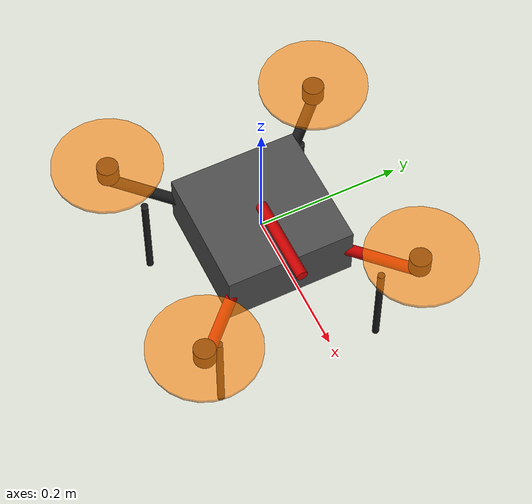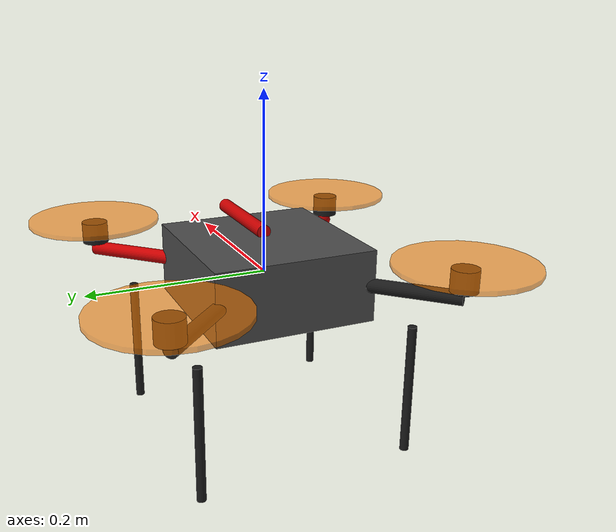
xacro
<?xml version="1.0"?>
<robot xmlns:xacro="http://www.ros.org/wiki/xacro" name="drone2">

  <!-- ==================== Core Drone Description ==================== -->
  <xacro:include filename="drone_core.xacro" />

  <!-- ==================== Gazebo Configurations ==================== -->
  <xacro:include filename="gazebo.xacro" />

</robot>

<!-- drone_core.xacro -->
<robot xmlns:xacro="http://www.ros.org/wiki/xacro">

  <!-- ==================== Properties ==================== -->
  <!-- All-up weight (AUW): 2.5 kg -->
  <!-- Propeller diameter: 6 inch (0.1524 m), radius: 0.0762 m -->
  <!-- Frame: X-configuration quadcopter -->
  <xacro:property name="body_mass" value="1.0"/>
  <xacro:property name="rotor_mass" value="0.025"/>
  <xacro:property name="body_width" value="0.18"/>
  <xacro:property name="body_length" value="0.18"/>
  <xacro:property name="body_height" value="0.08"/>
  <xacro:property name="arm_length" value="0.22"/>
  <xacro:property name="arm_radius" value="0.008"/>
  <xacro:property name="prop_radius" value="0.0762"/>
  <xacro:property name="prop_thickness" value="0.005"/>
  <xacro:property name="leg_length" value="0.15"/>
  <xacro:property name="leg_radius" value="0.005"/>

  <!-- ==================== Materials ==================== -->
  <material name="dark_grey">
    <color rgba="0.3 0.3 0.3 1.0"/>
  </material>
  <material name="red">
    <color rgba="0.8 0.0 0.0 1.0"/>
  </material>
  <material name="green">
    <color rgba="0.0 0.8 0.0 1.0"/>
  </material>
  <material name="black">
    <color rgba="0.1 0.1 0.1 1.0"/>
  </material>
  <material name="orange">
    <color rgba="1.0 0.5 0.0 0.6"/>
  </material>

  <!-- ==================== Base Link ==================== -->
  <link name="base_link"/>

  <!-- base_footprint: on the ground directly below base_link -->
  <link name="base_footprint"/>
  <joint name="base_footprint_joint" type="fixed">
    <parent link="base_link"/>
    <child link="base_footprint"/>
    <origin xyz="0 0 -0.195" rpy="0 0 0"/>
  </joint>

  <!-- ==================== Body ==================== -->
  <link name="body_link">
    <visual>
      <geometry>
        <box size="${body_length} ${body_width} ${body_height}"/>
      </geometry>
      <material name="dark_grey"/>
    </visual>
    <collision>
      <geometry>
        <box size="${body_length} ${body_width} ${body_height}"/>
      </geometry>
    </collision>
    <inertial>
      <mass value="${body_mass}"/>
      <inertia ixx="0.012" ixy="0" ixz="0" iyy="0.012" iyz="0" izz="0.020"/>
    </inertial>
  </link>
  <joint name="body_joint" type="fixed">
    <parent link="base_link"/>
    <child link="body_link"/>
    <origin xyz="0 0 0" rpy="0 0 0"/>
  </joint>

  <!-- Arrow marker showing front direction -->
  <link name="front_marker">
    <visual>
      <origin xyz="0.06 0 0" rpy="0 1.5708 0"/>
      <geometry>
        <cylinder radius="0.008" length="0.12"/>
      </geometry>
      <material name="red"/>
    </visual>
  </link>
  <joint name="front_marker_joint" type="fixed">
    <parent link="base_link"/>
    <child link="front_marker"/>
    <origin xyz="0 0 0.045" rpy="0 0 0"/>
  </joint>

  <!-- ==================== Arm Macro ==================== -->
  <xacro:macro name="arm" params="id x y angle color">
    <link name="arm_${id}">
      <visual>
        <origin xyz="${arm_length/2} 0 0" rpy="0 1.5708 0"/>
        <geometry>
          <cylinder radius="${arm_radius}" length="${arm_length}"/>
        </geometry>
        <material name="${color}"/>
      </visual>
    </link>
    <joint name="arm_${id}_joint" type="fixed">
      <parent link="base_link"/>
      <child link="arm_${id}"/>
      <origin xyz="0 0 0" rpy="0 0 ${angle}"/>
    </joint>

    <!-- Motor mount -->
    <link name="motor_${id}">
      <visual>
        <geometry>
          <cylinder radius="0.015" length="0.025"/>
        </geometry>
        <material name="black"/>
      </visual>
    </link>
    <joint name="motor_${id}_joint" type="fixed">
      <parent link="base_link"/>
      <child link="motor_${id}"/>
      <origin xyz="${x} ${y} 0.02" rpy="0 0 0"/>
    </joint>

    <!-- Propeller disc -->
    <link name="prop_${id}">
      <visual>
        <geometry>
          <cylinder radius="${prop_radius}" length="${prop_thickness}"/>
        </geometry>
        <material name="orange"/>
      </visual>
      <inertial>
        <mass value="${rotor_mass}"/>
        <inertia ixx="0.0001" ixy="0" ixz="0" iyy="0.0001" iyz="0" izz="0.0001"/>
      </inertial>
    </link>
    <joint name="prop_${id}_joint" type="continuous">
      <parent link="base_link"/>
      <child link="prop_${id}"/>
      <origin xyz="${x} ${y} 0.035" rpy="0 0 0"/>
      <axis xyz="0 0 1"/>
    </joint>
  </xacro:macro>

  <!-- ==================== Landing Leg Macro ==================== -->
  <xacro:macro name="leg" params="id x y">
    <link name="leg_${id}">
      <visual>
        <origin xyz="0 0 ${-leg_length/2}" rpy="0 0 0"/>
        <geometry>
          <cylinder radius="${leg_radius}" length="${leg_length}"/>
        </geometry>
        <material name="black"/>
      </visual>
    </link>
    <joint name="leg_${id}_joint" type="fixed">
      <parent link="base_link"/>
      <child link="leg_${id}"/>
      <origin xyz="${x} ${y} -0.04" rpy="0 0 0"/>
    </joint>
  </xacro:macro>

  <!-- ==================== Instantiate Arms (X-config) ==================== -->
  <!-- Front-Right (motor 0): red arm -->
  <xacro:arm id="0" x="0.155" y="-0.155" angle="-0.7854" color="red"/>
  <!-- Rear-Left (motor 1): black arm -->
  <xacro:arm id="1" x="-0.155" y="0.155" angle="2.3562" color="black"/>
  <!-- Front-Left (motor 2): red arm -->
  <xacro:arm id="2" x="0.155" y="0.155" angle="0.7854" color="red"/>
  <!-- Rear-Right (motor 3): black arm -->
  <xacro:arm id="3" x="-0.155" y="-0.155" angle="-2.3562" color="black"/>

  <!-- ==================== Landing Legs ==================== -->
  <xacro:leg id="fl" x="0.12" y="0.12"/>
  <xacro:leg id="fr" x="0.12" y="-0.12"/>
  <xacro:leg id="rl" x="-0.12" y="0.12"/>
  <xacro:leg id="rr" x="-0.12" y="-0.12"/>

  <!-- ==================== IMU Link (sensor frame) ==================== -->
  <link name="imu_link">
    <inertial>
      <mass value="0.01"/>
      <inertia ixx="0.000001" ixy="0" ixz="0" iyy="0.000001" iyz="0" izz="0.000001"/>
    </inertial>
  </link>
  <joint name="imu_joint" type="fixed">
    <parent link="base_link"/>
    <child link="imu_link"/>
    <origin xyz="0 0 0" rpy="0 0 0"/>
  </joint>

</robot>
